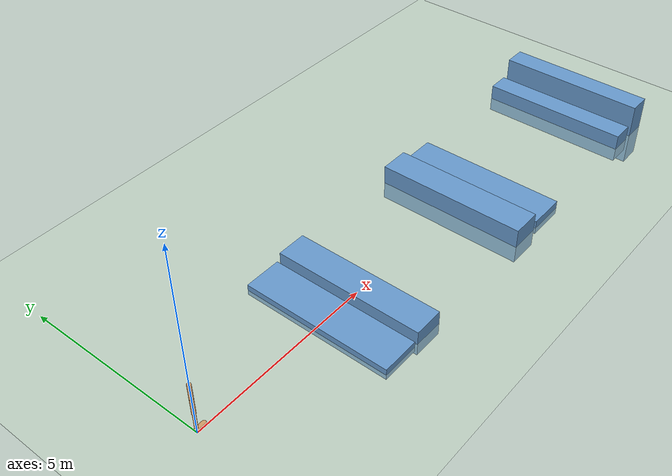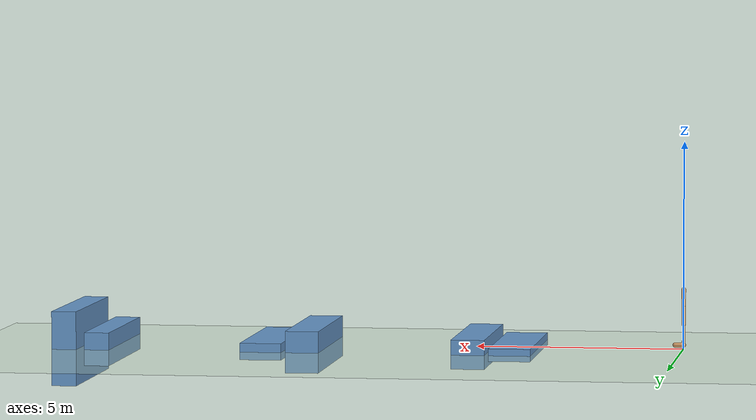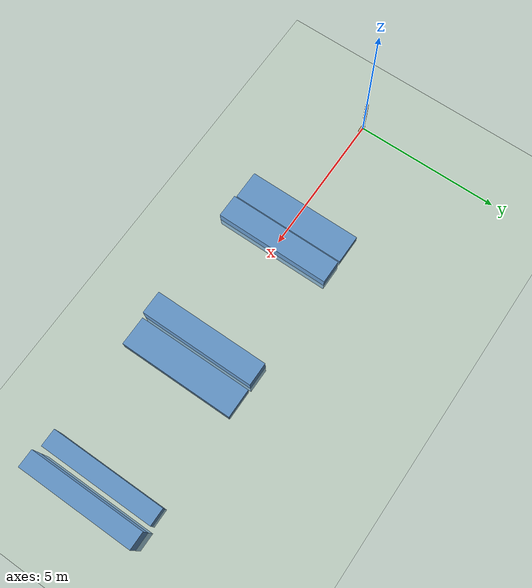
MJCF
<!-- Curriculum Level 3: 연속 장애물 돌파 훈련 -->
<mujoco model="walker2d_curriculum3">
  <compiler angle="degree" inertiafromgeom="true"/>
  <default>
    <joint armature="0.01" damping=".1" limited="true"/>
    <geom conaffinity="0" condim="3" contype="1" density="1000" friction=".7 .1 .1" rgba="0.8 0.6 .4 1"/>
  </default>
  <option integrator="RK4" timestep="0.002"/>
  <worldbody>
    <light cutoff="100" diffuse="1 1 1" dir="-0 0 -1.3" directional="true" exponent="1" pos="0 0 1.3" specular=".1 .1 .1"/>
    <geom conaffinity="1" condim="3" name="floor" pos="0 0 0" rgba="0.8 0.9 0.8 1" size="40 40 40" type="plane" material="MatPlane"/>

    <!-- Bumps: 간격이 좁은 연속 장애물 그룹 -->
    <!-- Group 1 -->
    <geom conaffinity="1" condim="3" name="bump1" pos="4 0 0" size="0.5 2 0.15" type="box" rgba="0.4 0.6 0.8 1"/>
    <geom conaffinity="1" condim="3" name="bump2" pos="5 0 0" size="0.4 2 0.35" type="box" rgba="0.4 0.6 0.8 1"/>
    <!-- Group 2 -->
    <geom conaffinity="1" condim="3" name="bump3" pos="9 0 0" size="0.4 2 0.50" type="box" rgba="0.4 0.6 0.8 1"/>
    <geom conaffinity="1" condim="3" name="bump4" pos="10 0 0" size="0.5 2 0.20" type="box" rgba="0.4 0.6 0.8 1"/>
    <!-- Group 3 -->
    <geom conaffinity="1" condim="3" name="bump5" pos="14 0 0" size="0.3 2 0.40" type="box" rgba="0.4 0.6 0.8 1"/>
    <geom conaffinity="1" condim="3" name="bump6" pos="14.8 0 0" size="0.3 2 0.90" type="box" rgba="0.4 0.6 0.8 1"/>

    <!-- Walker Body (기존과 동일) -->
    <body name="torso" pos="0 0 1.25">
      <camera name="track" mode="trackcom" pos="0 -3 -0.25" xyaxes="1 0 0 0 0 1"/>
      <joint armature="0" axis="1 0 0" damping="0" limited="false" name="rootx" pos="0 0 -1.25" stiffness="0" type="slide"/><joint armature="0" axis="0 0 1" damping="0" limited="false" name="rootz" pos="0 0 -1.25" ref="1.25" stiffness="0" type="slide"/><joint armature="0" axis="0 1 0" damping="0" limited="false" name="rooty" pos="0 0 0" stiffness="0" type="hinge"/>
      <geom friction="0.9" name="torso_geom" size="0.05 0.2" type="capsule"/>
      <body name="thigh" pos="0 0 -0.2"><joint axis="0 -1 0" name="thigh_joint" pos="0 0 0" range="-150 0" type="hinge"/><geom friction="0.9" pos="0 0 -0.225" name="thigh_geom" size="0.05 0.225" type="capsule"/><body name="leg" pos="0 0 -0.7"><joint axis="0 -1 0" name="leg_joint" pos="0 0 0.25" range="-150 0" type="hinge"/><geom friction="0.9" name="leg_geom" size="0.04 0.25" type="capsule"/><body name="foot" pos="0.2 0 -0.35"><joint axis="0 -1 0" name="foot_joint" pos="-0.2 0 0.1" range="-45 45" type="hinge"/><geom friction="1.9" pos="-0.1 0 0.1" quat="0.707107 0 -0.707107 0" name="foot_geom" size="0.06 0.1" type="capsule"/></body></body></body>
      <body name="thigh_left" pos="0 0 -0.2"><joint axis="0 -1 0" name="thigh_left_joint" pos="0 0 0" range="-150 0" type="hinge"/><geom friction="0.9" name="thigh_left_geom" rgba=".7 .3 .6 1" size="0.05 0.225" pos="0 0 -0.225" type="capsule"/><body name="leg_left" pos="0 0 -0.7"><joint axis="0 -1 0" name="leg_left_joint" pos="0 0 0.25" range="-150 0" type="hinge"/><geom friction="0.9" name="leg_left_geom" rgba=".7 .3 .6 1" size="0.04 0.25" type="capsule"/><body name="foot_left" pos="0.2 0 -0.35"><joint axis="0 -1 0" name="foot_left_joint" pos="-0.2 0 0.1" range="-45 45" type="hinge"/><geom friction="1.9" name="foot_left_geom" rgba=".7 .3 .6 1" size="0.06 0.1" pos="-0.1 0 0.1" type="capsule" quat="0.707107 0 -0.707107 0"/></body></body></body>
    </body>
  </worldbody>
  <actuator>
    <motor ctrllimited="true" ctrlrange="-1.0 1.0" gear="100" joint="thigh_joint"/><motor ctrllimited="true" ctrlrange="-1.0 1.0" gear="100" joint="leg_joint"/><motor ctrllimited="true" ctrlrange="-1.0 1.0" gear="100" joint="foot_joint"/><motor ctrllimited="true" ctrlrange="-1.0 1.0" gear="100" joint="thigh_left_joint"/><motor ctrllimited="true" ctrlrange="-1.0 1.0" gear="100" joint="leg_left_joint"/><motor ctrllimited="true" ctrlrange="-1.0 1.0" gear="100" joint="foot_left_joint"/>
  </actuator>
  <asset><texture type="skybox" builtin="gradient" rgb1=".4 .5 .6" rgb2="0 0 0" width="100" height="100"/><texture builtin="flat" height="1278" mark="cross" markrgb="1 1 1" name="texgeom" random="0.01" rgb1="0.8 0.6 0.4" rgb2="0.8 0.6 0.4" type="cube" width="127"/><texture builtin="checker" height="100" name="texplane" rgb1="0.3 0.3 0.3" rgb2="0.8 0.8 0.8" type="2d" width="100"/><material name="MatPlane" reflectance="0.5" shininess="1" specular="1" texrepeat="60 60" texture="texplane"/><material name="geom" texture="texgeom" texuniform="true"/></asset>
</mujoco>
